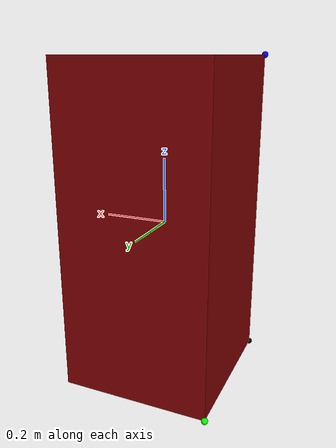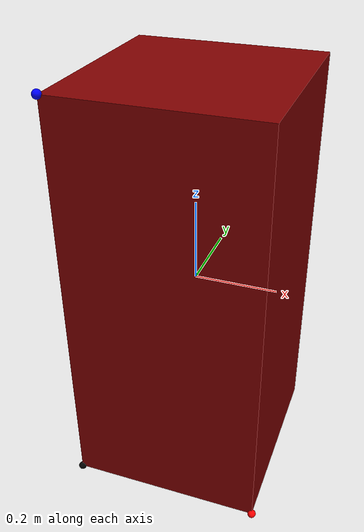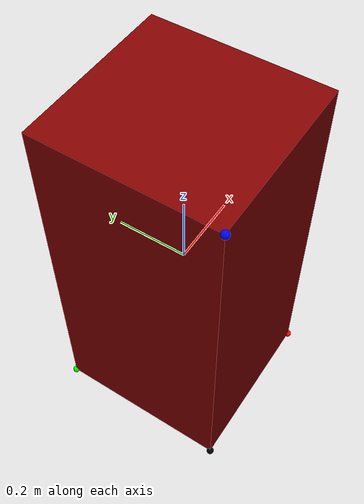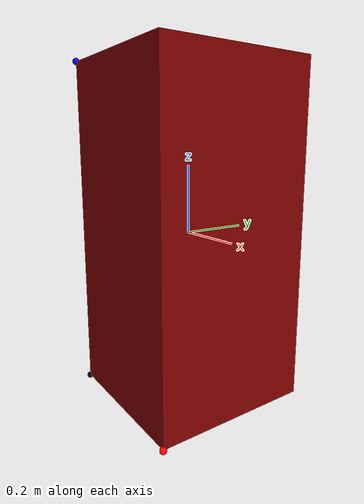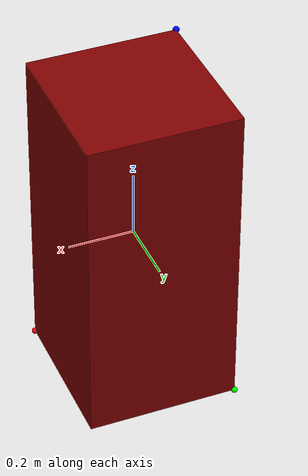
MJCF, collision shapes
<mujoco model="model">
  <asset>
    <material name="Bege" specular="0.5" shininess="0.15999998099999999"
      rgba="0.621795 0.536770 0.365757 1.0" />
    <material name="Prata" specular="0.5" shininess="0.15999998099999999"
      rgba="0.504000 0.504000 0.504000 1.0" />
    <material name="Preto" specular="0.5" shininess="0.15999998099999999"
      rgba="0.000000 0.000000 0.000000 1.0" />
    <material name="lambert1" specular="0.5" shininess="0.15999998099999999"
      rgba="0.500000 0.500000 0.500000 1.0" />
    <mesh file="visuals/model_0.obj" name="model_0_vis" scale="1 1 1" />
    <mesh file="visuals/model_2.obj" name="model_2_vis" scale="1 1 1" />
    <mesh file="visuals/model_3.obj" name="model_3_vis" scale="1 1 1" />
  </asset>
  <default>
    <default class="visual">
      <geom conaffinity="0" contype="0" group="1" type="mesh" />
    </default>
    <default class="collision">
      <geom group="0" rgba="0.5 0 0 0.5" />
    </default>
  </default>
  <worldbody>
    <body>
      <!-- exterior bounding box points -->
      <site rgba="0 0 0 1" size="0.01" pos="-0.2320324546589323 -0.24096115720684336 -0.5"
        name="ext_p0" />
      <site rgba="1 0 0 1" size="0.01" pos="0.2320324546589323 -0.24096115720684336 -0.5"
        name="ext_px" />
      <site rgba="0 1 0 1" size="0.01" pos="-0.2320324546589323 0.24096115720684336 -0.5"
        name="ext_py" />
      <site rgba="0 0 1 1" size="0.01" pos="-0.2320324546589323 -0.24096115720684336 0.5"
        name="ext_pz" />
      <!-- interior bounding box points -->
      <body name="object">
        <geom solimp="0.998 0.998 0.001" solref="0.001 1" density="100" friction="0.95 0.3 0.1"
          type="mesh" mesh="model_0_vis" material="Prata" class="visual" />
        <geom solimp="0.998 0.998 0.001" solref="0.001 1" density="100" friction="0.95 0.3 0.1"
          type="mesh" mesh="model_2_vis" material="Bege" class="visual" />
        <geom solimp="0.998 0.998 0.001" solref="0.001 1" density="100" friction="0.95 0.3 0.1"
          type="mesh" mesh="model_3_vis" material="Preto" class="visual" />
        <geom class="collision" type="box" pos="0 0 0"
          size="0.2320324546589323 0.24096115720684336 0.5" />
      </body>
    </body>
  </worldbody>
</mujoco>
